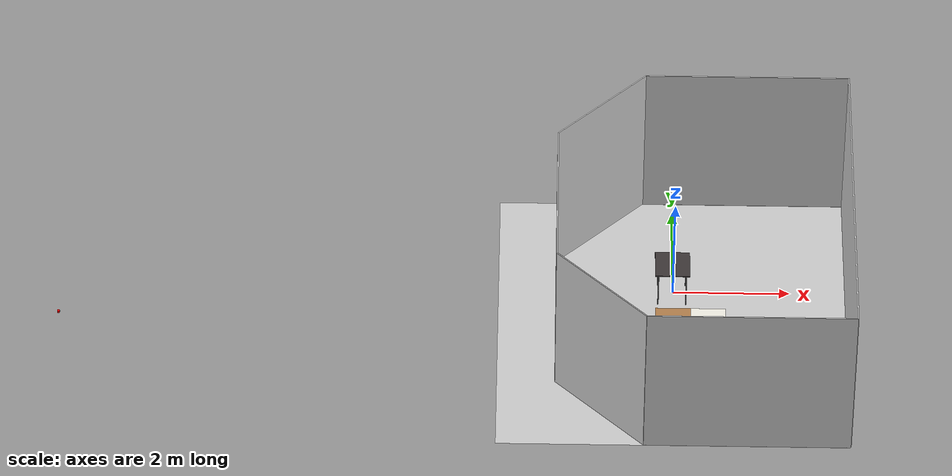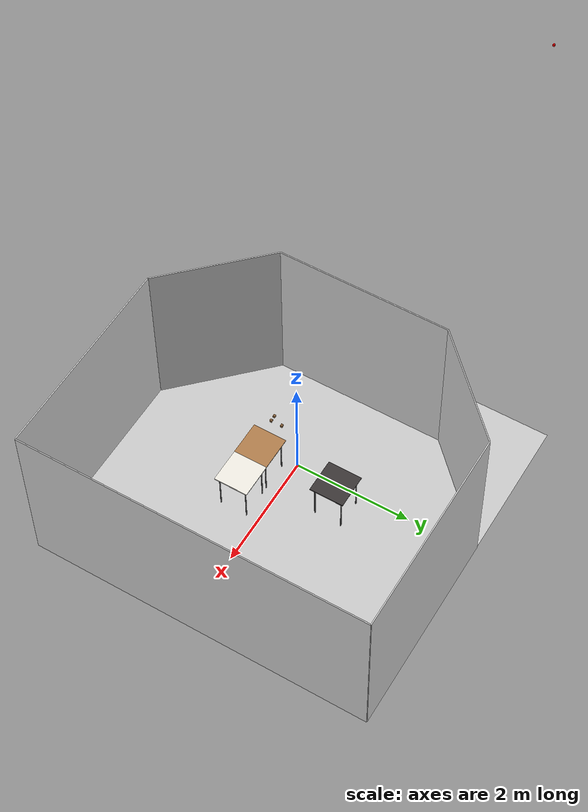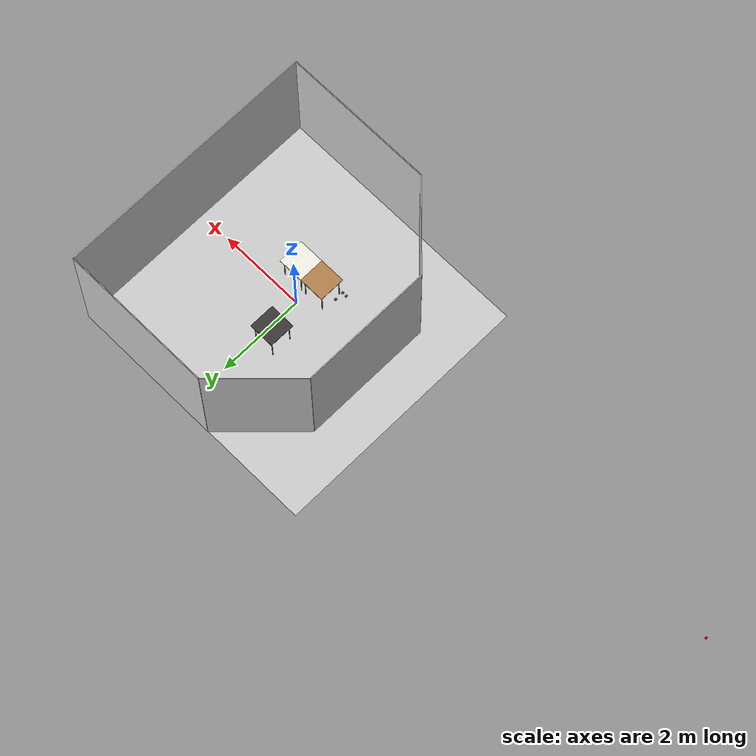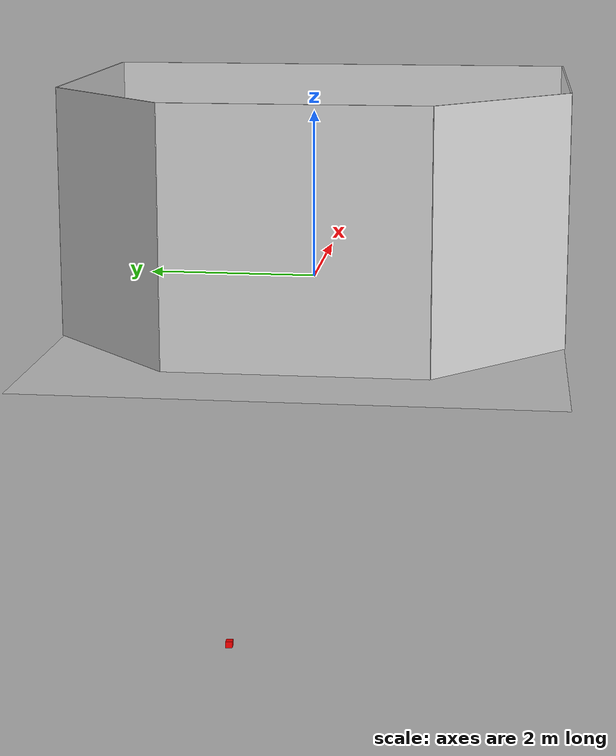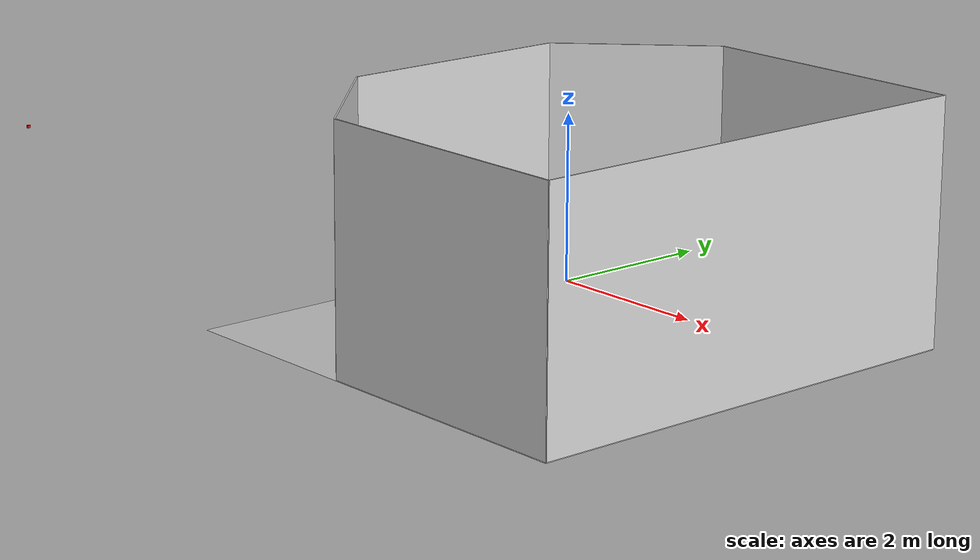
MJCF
<mujoco model="empty_arena">
    <!-- Asset definitions: Textures and materials used in the simulation -->
    <asset>
        <!-- Skybox gradient texture -->
        <texture builtin="gradient" height="256" rgb1=".9 .9 1." rgb2=".2 .3 .4" type="skybox" width="256"/>

        <!-- Floor texture -->
        <texture file="textures/light-gray-floor-tile.png" type="2d" name="texplane"/>
        <material name="floorplane" reflectance="0.01" shininess="0.0" specular="0.0" texrepeat="2 2" texture="texplane" texuniform="true"/>

        <!-- Wall texture -->
        <texture file="textures/light-gray-plaster.png" type="2d" name="tex-light-gray-plaster"/>
        <material name="walls_mat" reflectance="0.0" shininess="0.1" specular="0.1" texrepeat="3 3" texture="tex-light-gray-plaster" texuniform="true"/>

        <!-- Wood texture -->
        <texture file="textures/light-wood.png" type="2d" name="tex-light-wood"/>
        <material name="light-wood" reflectance="0.7" texrepeat="15 15" texture="tex-light-wood" texuniform="true"/>

        <!-- Define the wood texture -->
        <texture name="wood" file="wood.png" type="2d"/>
        <material name="wood_material" texture="wood" texrepeat="50 50" texuniform="true" rgba="0.8 0.8 0.8 1"/>
    </asset>

    <!-- Visual settings: Framebuffer resolution for rendering -->
    <visual>
        <global offwidth="1280" offheight="720"/>
    </visual>

    <!-- World body: Defines the physical objects and layout of the scene -->
    <worldbody>
        <!-- Floor geometry -->
        <geom condim="3" group="1" material="floorplane" name="floor" pos="0 0 -0.7" size="3 3 .125" type="plane"/>

        <!-- Walls (visual only, no collision) -->
        <geom pos="-1.25 2.25 .8" quat="0.6532815 0.6532815 0.2705981 0.2705981" size="1.06 1.5 0.01" type="box" conaffinity="0" contype="0" group="1" name="wall_leftcorner_visual" material="walls_mat"/>
        <geom pos="-1.25 -2.25 .8" quat="0.6532815 0.6532815 -0.2705981 -0.2705981" size="1.06 1.5 0.01" type="box" conaffinity="0" contype="0" group="1" name="wall_rightcorner_visual" material="walls_mat"/>
        <geom pos="1.25 3 .8" quat="0.7071 0.7071 0 0" size="1.75 1.5 0.01" type="box" conaffinity="0" contype="0" group="1" name="wall_left_visual" material="walls_mat"/>
        <geom pos="1.25 -3 .8" quat="0.7071 -0.7071 0 0" size="1.75 1.5 0.01" type="box" conaffinity="0" contype="0" group="1" name="wall_right_visual" material="walls_mat"/>
        <geom pos="-2 0 .8" quat="0.5 0.5 0.5 0.5" size="1.5 1.5 0.01" type="box" conaffinity="0" contype="0" group="1" name="wall_rear_visual" material="walls_mat"/>
        <geom pos="3 0 .8" quat="0.5 0.5 -0.5 -0.5" size="3 1.5 0.01" type="box" conaffinity="0" contype="0" group="1" name="wall_front_visual" material="walls_mat"/>

        <!-- Light source -->
        <light pos="1.0 1.0 1.5" dir="-0.2 -0.2 -1" specular="0.3 0.3 0.3" directional="true" castshadow="false"/>

        <!-- Tables -->
        <body name="table_wood" pos="0.0 -0.7 -0.7">
            <geom name="table_wood_top" type="box" size=".30 .30 .01" pos="0 0 .7" material="light-wood"/>
            <geom name="table_wood_leg_1" type="cylinder" size=".01 .7" pos=".24 -.24 -.0" euler="0 0 0"/>
            <geom name="table_wood_leg_2" type="cylinder" size=".01 .7" pos=".24 .24 -.0" euler="0 0 0"/>
            <geom name="table_wood_leg_3" type="cylinder" size=".01 .7" pos="-.24 -.24 -.0" euler="0 0 0"/>
            <geom name="table_wood_leg_4" type="cylinder" size=".01 .7" pos="-.24 .24 -.0" euler="0 0 0"/>
        </body>
        <body name="table_black" pos="0 0.7 -0.7">
            <geom name="table_black_top" type="box" size=".30 .30 .01" pos="0 0 0.7" rgba="0.23529411764 0.21568627451 0.21568627451 1"/>
            <geom name="table_black_leg_1" type="cylinder" size=".01 .7" pos=".24 -.24 -.0" euler="0 0 0"/>
            <geom name="table_black_leg_2" type="cylinder" size=".01 .7" pos=".24 .24 -.0" euler="0 0 0"/>
            <geom name="table_black_leg_3" type="cylinder" size=".01 .7" pos="-.24 -.24 -.0" euler="0 0 0"/>
            <geom name="table_black_leg_4" type="cylinder" size=".01 .7" pos="-.24 .24 -.0" euler="0 0 0"/>
        </body>
        <body name="tale_white" pos="0.6 -0.7  -0.7">
            <geom name="table_white_top" type="box" size=".30 .30 .01" pos="0 0 .7" rgba="0.95 0.94 0.9 1"/>
            <geom name="table_white_leg_1" type="cylinder" size=".01 .7" pos=".24 -.24 -.0" euler="0 0 0"/>
            <geom name="table_white_leg_2" type="cylinder" size=".01 .7" pos=".24 .24 -.0" euler="0 0 0"/>
            <geom name="table_white_leg_3" type="cylinder" size=".01 .7" pos="-.24 -.24 -.0" euler="0 0 0"/>
            <geom name="table_white_leg_4" type="cylinder" size=".01 .7" pos="-.24 .24 -.0" euler="0 0 0"/>
        </body>

        <!-- Dishes -->
        <body name="dish0" pos="-0.5 -0.8 0.025" quat="0. 0. 1. 0.">
            <freejoint name="dish0_fj"/> <!-- Free joint for movement -->
            <geom type="box" size=".02 .02 .02" material="wood_material"/> <!-- Dish geometry -->
        </body>
        <body name="dish1" pos="-10.5 -0.7 0.025" quat="0. 0. 1. 0.">
            <freejoint name="dish1_fj"/>
            <geom type="box" size=".02 .02 .02" material="wood_material" rgba="1 0 0 1"/> <!-- Red color -->
        </body>
        <body name="dish2" pos="-0.5 -0.6 0.025" quat="0. 0. 1. 0.">
            <freejoint name="dish2_fj"/>
            <geom type="box" size=".02 .02 .02" material="wood_material"/>
        </body>
        <body name="dish3" pos="-0.6 -0.8 0.025" quat="0. 0. 1. 0.">
            <freejoint name="dish3_fj"/>
            <geom type="box" size=".02 .02 .02" material="wood_material"/>
        </body>

        <!-- Camera definitions -->
        <camera name="top-right" pos="2.182 1.724 1.890" xyaxes="-0.685 0.729 0.000 -0.456 -0.429 0.780"/>
        <camera name="leftangleview" pos="2.182 -1.724 2.590" xyaxes="0.685 0.729 0.000 -0.456 0.429 0.780"/>
        <camera mode="fixed" name="frontview" pos="2.5 0 1.45" quat="0.56 0.43 0.43 0.56"/>
        <camera mode="fixed" name="birdview" pos="-0.2 0 3.0" quat="0.7071 0 0 0.7071"/>
        <camera mode="fixed" name="leftsideview" pos="0.151 -2.941 0.9" xyaxes="1.000 0.000 0.000 0.000 0.000 1.000"/>
        <camera mode="fixed" name="rightsideview" pos="0.151 2.941 0.5" xyaxes="-1.000 0.000 0.000 0.000 0.000 1.000"/>
        <camera name="robot-cam" pos="1.3 -1.5 1.1" euler="1 0 1.1" fovy="45"/>
        <camera mode="fixed" name="rack-close-view" pos=".382 1.2 0.8" xyaxes="-1 0 0 0 0 1"/>
    </worldbody>
</mujoco>
